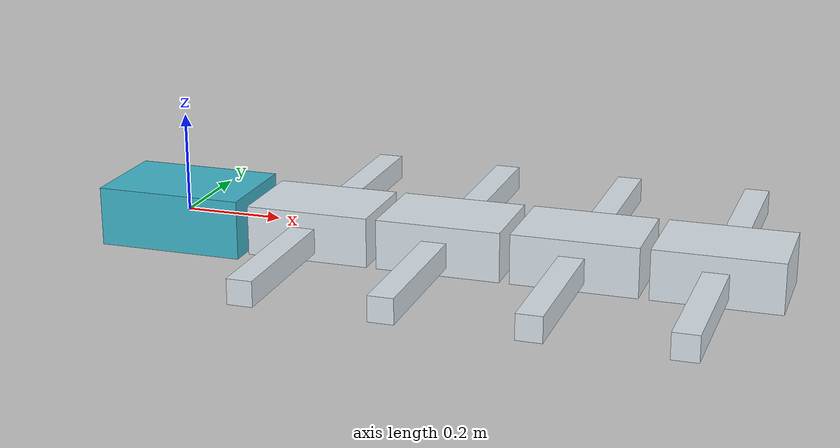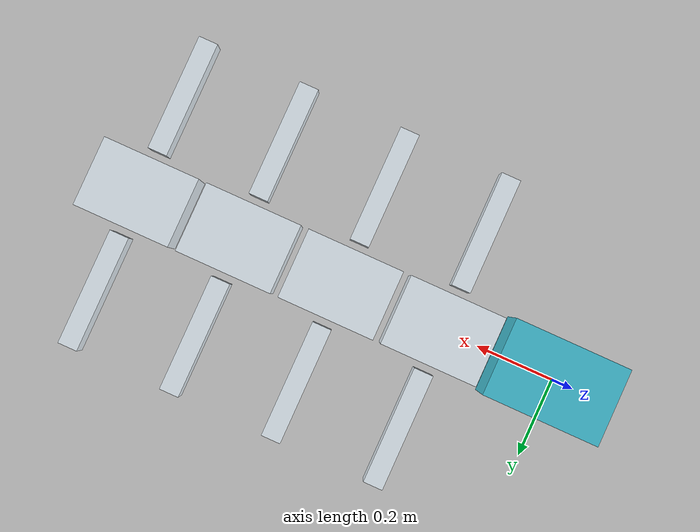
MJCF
<mujoco model="criatura">
  <compiler angle="degree" autolimits="true"/>
  <option timestep="0.002083" gravity="0 0 0" integrator="implicitfast"/>
  <default>
    <geom type="box" density="300.0" rgba="0.85 0.89 0.92 1"/>
    <joint type="hinge"/>
    <motor ctrlrange="-1 1"/>
  </default>
  <worldbody>
    <body name="p0_n0" pos="0.00000 0.00000 0.00000" quat="1.000000 0.000000 0.000000 0.000000">
      <freejoint name="raiz"/>
      <geom name="g_p0_n0" size="0.15000 0.10000 0.06000" rgba="0.25 0.72 0.8 1"/>
      <body name="p1_n1" pos="0.29500 0.00000 0.00000" quat="1.000000 0.000000 0.000000 0.000000">
        <joint name="p1_n1_j0" axis="0.0000 0.0000 1.0000" pos="-0.14500 0 0" range="-30.00 30.00" damping="0.9000"/>
        <geom name="g_p1_n1" size="0.12500 0.09000 0.05000"/>
        <body name="p2_n1" pos="0.27000 0.00000 0.00000" quat="1.000000 0.000000 0.000000 0.000000">
          <joint name="p2_n1_j0" axis="0.0000 0.0000 1.0000" pos="-0.14500 0 0" range="-30.00 30.00" damping="0.9000"/>
          <geom name="g_p2_n1" size="0.12500 0.09000 0.05000"/>
          <body name="p3_n1" pos="0.27000 0.00000 0.00000" quat="1.000000 0.000000 0.000000 0.000000">
            <joint name="p3_n1_j0" axis="0.0000 0.0000 1.0000" pos="-0.14500 0 0" range="-30.00 30.00" damping="0.9000"/>
            <geom name="g_p3_n1" size="0.12500 0.09000 0.05000"/>
            <body name="p4_n1" pos="0.27000 0.00000 0.00000" quat="1.000000 0.000000 0.000000 0.000000">
              <joint name="p4_n1_j0" axis="0.0000 0.0000 1.0000" pos="-0.14500 0 0" range="-30.00 30.00" damping="0.9000"/>
              <geom name="g_p4_n1" size="0.12500 0.09000 0.05000"/>
              <body name="p5_n2" pos="0.00000 0.26000 0.00000" quat="0.500000 0.500000 0.500000 0.500000">
                <joint name="p5_n2_j0" axis="0.0000 0.0000 1.0000" pos="-0.17000 0 0" range="-45.00 45.00" damping="0.1250"/>
                <geom name="g_p5_n2" size="0.15000 0.02500 0.02500"/>
              </body>
              <body name="p6_n2" pos="0.00000 -0.26000 0.00000" quat="-0.500000 0.500000 -0.500000 0.500000">
                <joint name="p6_n2_j0" axis="0.0000 0.0000 1.0000" pos="-0.17000 0 0" range="-45.00 45.00" damping="0.1250"/>
                <geom name="g_p6_n2" size="0.15000 0.02500 0.02500"/>
              </body>
            </body>
            <body name="p7_n2" pos="0.00000 0.26000 0.00000" quat="0.500000 0.500000 0.500000 0.500000">
              <joint name="p7_n2_j0" axis="0.0000 0.0000 1.0000" pos="-0.17000 0 0" range="-45.00 45.00" damping="0.1250"/>
              <geom name="g_p7_n2" size="0.15000 0.02500 0.02500"/>
            </body>
            <body name="p8_n2" pos="0.00000 -0.26000 0.00000" quat="-0.500000 0.500000 -0.500000 0.500000">
              <joint name="p8_n2_j0" axis="0.0000 0.0000 1.0000" pos="-0.17000 0 0" range="-45.00 45.00" damping="0.1250"/>
              <geom name="g_p8_n2" size="0.15000 0.02500 0.02500"/>
            </body>
          </body>
          <body name="p9_n2" pos="0.00000 0.26000 0.00000" quat="0.500000 0.500000 0.500000 0.500000">
            <joint name="p9_n2_j0" axis="0.0000 0.0000 1.0000" pos="-0.17000 0 0" range="-45.00 45.00" damping="0.1250"/>
            <geom name="g_p9_n2" size="0.15000 0.02500 0.02500"/>
          </body>
          <body name="p10_n2" pos="0.00000 -0.26000 0.00000" quat="-0.500000 0.500000 -0.500000 0.500000">
            <joint name="p10_n2_j0" axis="0.0000 0.0000 1.0000" pos="-0.17000 0 0" range="-45.00 45.00" damping="0.1250"/>
            <geom name="g_p10_n2" size="0.15000 0.02500 0.02500"/>
          </body>
        </body>
        <body name="p11_n2" pos="0.00000 0.26000 0.00000" quat="0.500000 0.500000 0.500000 0.500000">
          <joint name="p11_n2_j0" axis="0.0000 0.0000 1.0000" pos="-0.17000 0 0" range="-45.00 45.00" damping="0.1250"/>
          <geom name="g_p11_n2" size="0.15000 0.02500 0.02500"/>
        </body>
        <body name="p12_n2" pos="0.00000 -0.26000 0.00000" quat="-0.500000 0.500000 -0.500000 0.500000">
          <joint name="p12_n2_j0" axis="0.0000 0.0000 1.0000" pos="-0.17000 0 0" range="-45.00 45.00" damping="0.1250"/>
          <geom name="g_p12_n2" size="0.15000 0.02500 0.02500"/>
        </body>
      </body>
    </body>
  </worldbody>
  <actuator>
    <motor name="m_p1_n1_j0" joint="p1_n1_j0" gear="18.0000"/>
    <motor name="m_p2_n1_j0" joint="p2_n1_j0" gear="18.0000"/>
    <motor name="m_p3_n1_j0" joint="p3_n1_j0" gear="18.0000"/>
    <motor name="m_p4_n1_j0" joint="p4_n1_j0" gear="18.0000"/>
    <motor name="m_p5_n2_j0" joint="p5_n2_j0" gear="2.5000"/>
    <motor name="m_p6_n2_j0" joint="p6_n2_j0" gear="-2.5000"/>
    <motor name="m_p7_n2_j0" joint="p7_n2_j0" gear="2.5000"/>
    <motor name="m_p8_n2_j0" joint="p8_n2_j0" gear="-2.5000"/>
    <motor name="m_p9_n2_j0" joint="p9_n2_j0" gear="2.5000"/>
    <motor name="m_p10_n2_j0" joint="p10_n2_j0" gear="-2.5000"/>
    <motor name="m_p11_n2_j0" joint="p11_n2_j0" gear="2.5000"/>
    <motor name="m_p12_n2_j0" joint="p12_n2_j0" gear="-2.5000"/>
  </actuator>
</mujoco>
